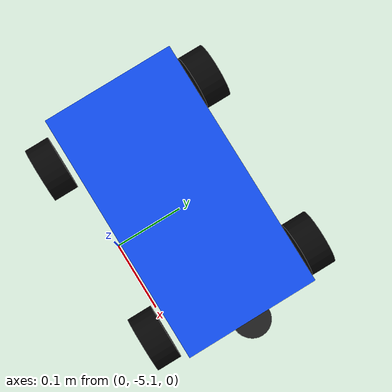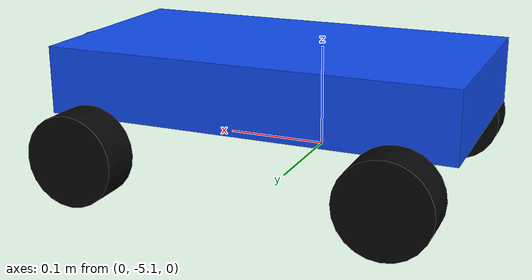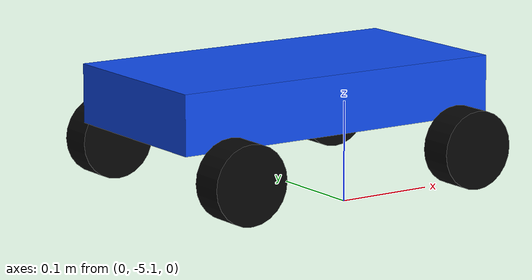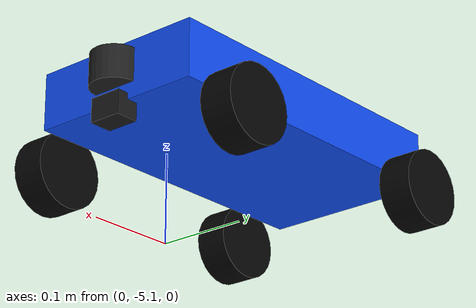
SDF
<?xml version="1.0"?>
<sdf version="1.9">
  <model name="avaj_car">
    <!-- Maße in Meter: Radstand 0.270, Spurweite 0.245, Reifen 0.080 x 0.036. -->
    <pose>0 -5 0.041 0 0 0</pose>

    <link name="base_link">
      <pose>0 0 0.055 0 0 0</pose>
      <inertial>
        <!-- Vorläufiger Startwert, bis das reale Fahrzeug gewogen wurde. -->
        <mass>3.0</mass>
        <inertia>
          <ixx>0.009925</ixx><ixy>0</ixy><ixz>0</ixz>
          <iyy>0.033300</iyy><iyz>0</iyz><izz>0.041325</izz>
        </inertia>
      </inertial>
      <collision name="collision">
        <geometry><box><size>0.36 0.19 0.06</size></box></geometry>
      </collision>
      <visual name="visual">
        <geometry><box><size>0.36 0.19 0.06</size></box></geometry>
        <material><ambient>0.04 0.18 0.65 1</ambient><diffuse>0.06 0.30 0.95 1</diffuse></material>
      </visual>
    </link>

    <!-- Kamera: Fahrzeugfront, 6 cm über dem Boden, Blick geradeaus (+X). -->
    <link name="camera_link">
      <pose>0.18 0 0.019 0 0 0</pose>
      <inertial><mass>0.03</mass><inertia><ixx>0.000005</ixx><iyy>0.000005</iyy><izz>0.000005</izz></inertia></inertial>
      <visual name="visual"><geometry><box><size>0.025 0.035 0.025</size></box></geometry><material><diffuse>0.1 0.1 0.1 1</diffuse></material></visual>
      <sensor name="uc852_sim" type="camera">
        <always_on>true</always_on><update_rate>20</update_rate><topic>/sim/camera/image_raw</topic>
        <camera>
          <camera_info_topic>/sim/camera/camera_info</camera_info_topic>
          <horizontal_fov>1.5708</horizontal_fov>
          <image><width>640</width><height>360</height><format>R8G8B8</format></image>
          <clip><near>0.05</near><far>30.0</far></clip>
        </camera>
      </sensor>
    </link>
    <joint name="camera_fixed_joint" type="fixed"><parent>base_link</parent><child>camera_link</child></joint>

    <!-- STL27: Fahrzeugfront, 10 cm über Boden, Nullrichtung 90 Grad rechts. -->
    <link name="lidar_link">
      <pose>0.18 0 0.059 0 0 -1.57079632679</pose>
      <inertial><mass>0.05</mass><inertia><ixx>0.00001</ixx><iyy>0.00001</iyy><izz>0.00001</izz></inertia></inertial>
      <visual name="visual"><geometry><cylinder><radius>0.025</radius><length>0.035</length></cylinder></geometry><material><diffuse>0.12 0.12 0.12 1</diffuse></material></visual>
      <sensor name="stl27_sim" type="gpu_lidar">
        <always_on>true</always_on><update_rate>10</update_rate><topic>lidar</topic>
        <ray>
          <scan><horizontal><samples>720</samples><resolution>1</resolution><min_angle>-3.14159265</min_angle><max_angle>3.14159265</max_angle></horizontal></scan>
          <range><min>0.02</min><max>25.0</max><resolution>0.01</resolution></range>
        </ray>
      </sensor>
    </link>
    <joint name="lidar_fixed_joint" type="fixed"><parent>base_link</parent><child>lidar_link</child></joint>

    <!-- BNO085: Fahrzeugmitte, aufrecht montiert. -->
    <link name="imu_link">
      <pose>0 0 0.055 0 0 0</pose>
      <inertial><mass>0.01</mass><inertia><ixx>0.000001</ixx><iyy>0.000001</iyy><izz>0.000001</izz></inertia></inertial>
      <visual name="visual"><geometry><box><size>0.025 0.025 0.008</size></box></geometry><material><diffuse>0.1 0.55 0.1 1</diffuse></material></visual>
      <sensor name="bno085_sim" type="imu">
        <always_on>true</always_on><update_rate>100</update_rate><topic>/sim/imu/data</topic>
      </sensor>
    </link>
    <joint name="imu_fixed_joint" type="fixed"><parent>base_link</parent><child>imu_link</child></joint>

    <link name="front_left_steering_link">
      <pose>0.135 0.1045 0 0 0 0</pose>
      <inertial><mass>0.05</mass><inertia><ixx>0.00001</ixx><iyy>0.00001</iyy><izz>0.00001</izz></inertia></inertial>
    </link>
    <link name="front_right_steering_link">
      <pose>0.135 -0.1045 0 0 0 0</pose>
      <inertial><mass>0.05</mass><inertia><ixx>0.00001</ixx><iyy>0.00001</iyy><izz>0.00001</izz></inertia></inertial>
    </link>

    <link name="front_left_wheel">
      <pose>0.135 0.1225 0 -1.57079632679 0 0</pose>
      <inertial><mass>0.12</mass><inertia><ixx>0.00006096</ixx><iyy>0.00006096</iyy><izz>0.000096</izz></inertia></inertial>
      <collision name="collision"><geometry><cylinder><radius>0.04</radius><length>0.036</length></cylinder></geometry><surface><friction><ode><mu>1.2</mu><mu2>0.7</mu2><fdir1>0 0 1</fdir1></ode></friction></surface></collision>
      <visual name="visual"><geometry><cylinder><radius>0.04</radius><length>0.036</length></cylinder></geometry><material><diffuse>0.025 0.025 0.025 1</diffuse></material></visual>
    </link>
    <link name="front_right_wheel">
      <pose>0.135 -0.1225 0 -1.57079632679 0 0</pose>
      <inertial><mass>0.12</mass><inertia><ixx>0.00006096</ixx><iyy>0.00006096</iyy><izz>0.000096</izz></inertia></inertial>
      <collision name="collision"><geometry><cylinder><radius>0.04</radius><length>0.036</length></cylinder></geometry><surface><friction><ode><mu>1.2</mu><mu2>0.7</mu2><fdir1>0 0 1</fdir1></ode></friction></surface></collision>
      <visual name="visual"><geometry><cylinder><radius>0.04</radius><length>0.036</length></cylinder></geometry><material><diffuse>0.025 0.025 0.025 1</diffuse></material></visual>
    </link>
    <link name="rear_left_wheel">
      <pose>-0.135 0.1225 0 -1.57079632679 0 0</pose>
      <inertial><mass>0.12</mass><inertia><ixx>0.00006096</ixx><iyy>0.00006096</iyy><izz>0.000096</izz></inertia></inertial>
      <collision name="collision"><geometry><cylinder><radius>0.04</radius><length>0.036</length></cylinder></geometry><surface><friction><ode><mu>1.2</mu><mu2>0.7</mu2><fdir1>0 0 1</fdir1></ode></friction></surface></collision>
      <visual name="visual"><geometry><cylinder><radius>0.04</radius><length>0.036</length></cylinder></geometry><material><diffuse>0.025 0.025 0.025 1</diffuse></material></visual>
    </link>
    <link name="rear_right_wheel">
      <pose>-0.135 -0.1225 0 -1.57079632679 0 0</pose>
      <inertial><mass>0.12</mass><inertia><ixx>0.00006096</ixx><iyy>0.00006096</iyy><izz>0.000096</izz></inertia></inertial>
      <collision name="collision"><geometry><cylinder><radius>0.04</radius><length>0.036</length></cylinder></geometry><surface><friction><ode><mu>1.2</mu><mu2>0.7</mu2><fdir1>0 0 1</fdir1></ode></friction></surface></collision>
      <visual name="visual"><geometry><cylinder><radius>0.04</radius><length>0.036</length></cylinder></geometry><material><diffuse>0.025 0.025 0.025 1</diffuse></material></visual>
    </link>

    <joint name="front_left_steering_joint" type="revolute">
      <parent>base_link</parent><child>front_left_steering_link</child>
      <axis><xyz>0 0 1</xyz><limit><lower>-0.60</lower><upper>0.60</upper><effort>8</effort><velocity>3</velocity></limit></axis>
    </joint>
    <joint name="front_right_steering_joint" type="revolute">
      <parent>base_link</parent><child>front_right_steering_link</child>
      <axis><xyz>0 0 1</xyz><limit><lower>-0.60</lower><upper>0.60</upper><effort>8</effort><velocity>3</velocity></limit></axis>
    </joint>
    <joint name="front_left_wheel_joint" type="revolute">
      <parent>front_left_steering_link</parent><child>front_left_wheel</child><axis><xyz>0 0 1</xyz></axis>
    </joint>
    <joint name="front_right_wheel_joint" type="revolute">
      <parent>front_right_steering_link</parent><child>front_right_wheel</child><axis><xyz>0 0 1</xyz></axis>
    </joint>
    <joint name="rear_left_wheel_joint" type="revolute">
      <parent>base_link</parent><child>rear_left_wheel</child><axis><xyz>0 0 1</xyz></axis>
    </joint>
    <joint name="rear_right_wheel_joint" type="revolute">
      <parent>base_link</parent><child>rear_right_wheel</child><axis><xyz>0 0 1</xyz></axis>
    </joint>

    <plugin filename="gz-sim-ackermann-steering-system" name="gz::sim::systems::AckermannSteering">
      <!-- Je zwei linke/rechte Antriebsgelenke ergeben Allradantrieb. -->
      <left_joint>front_left_wheel_joint</left_joint>
      <left_joint>rear_left_wheel_joint</left_joint>
      <right_joint>front_right_wheel_joint</right_joint>
      <right_joint>rear_right_wheel_joint</right_joint>
      <left_steering_joint>front_left_steering_joint</left_steering_joint>
      <right_steering_joint>front_right_steering_joint</right_steering_joint>
      <kingpin_width>0.209</kingpin_width>
      <wheel_base>0.270</wheel_base>
      <wheel_separation>0.245</wheel_separation>
      <wheel_radius>0.040</wheel_radius>
      <steering_limit>0.55</steering_limit>
      <min_velocity>-4.0</min_velocity><max_velocity>4.0</max_velocity>
      <min_acceleration>-5.0</min_acceleration><max_acceleration>5.0</max_acceleration>
      <odom_publish_frequency>50</odom_publish_frequency>
    </plugin>
  </model>
</sdf>
